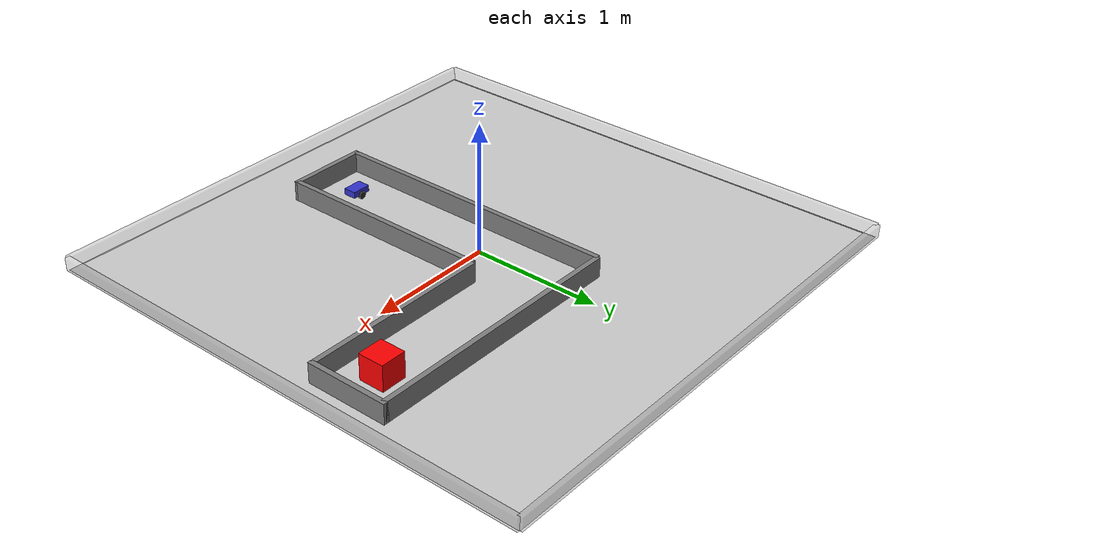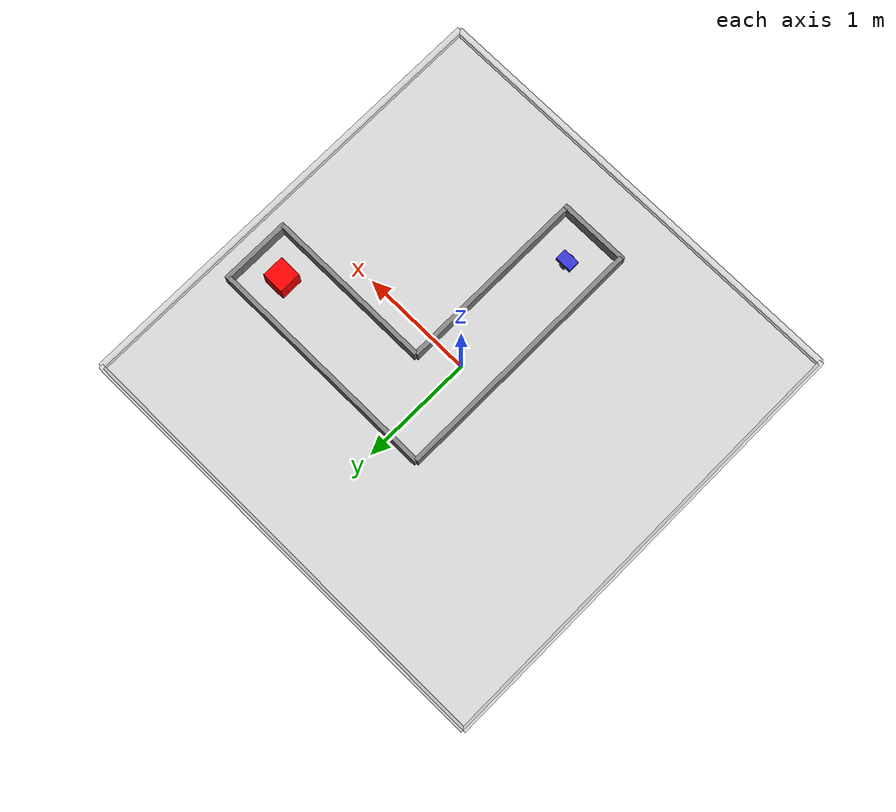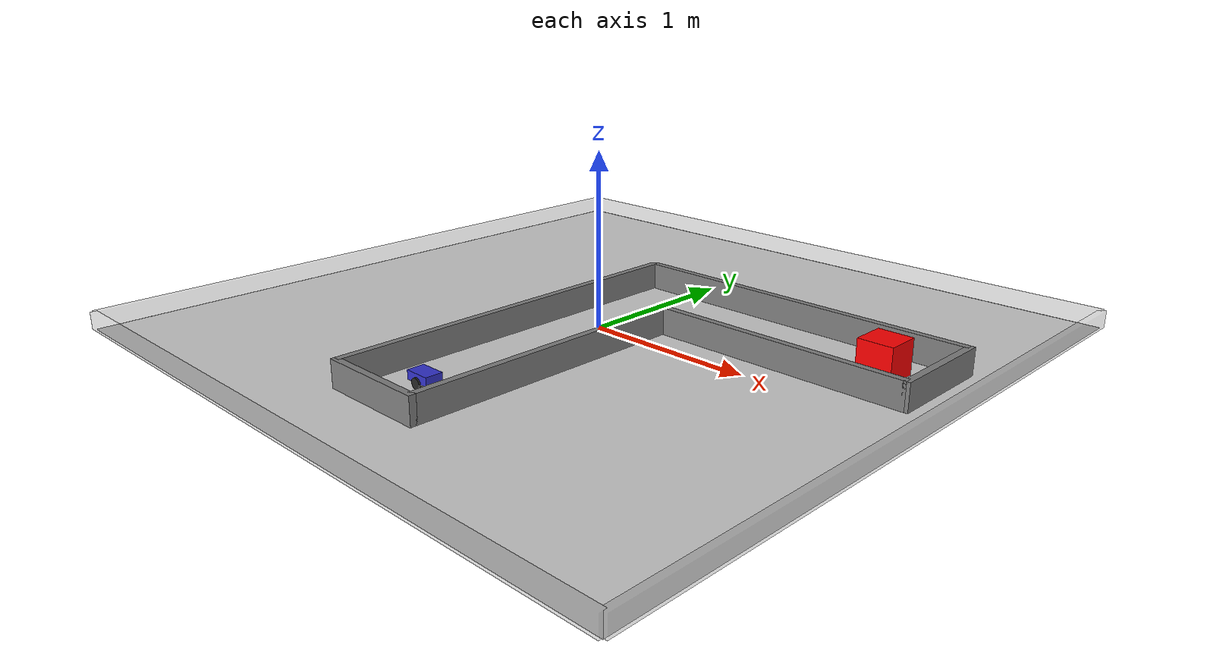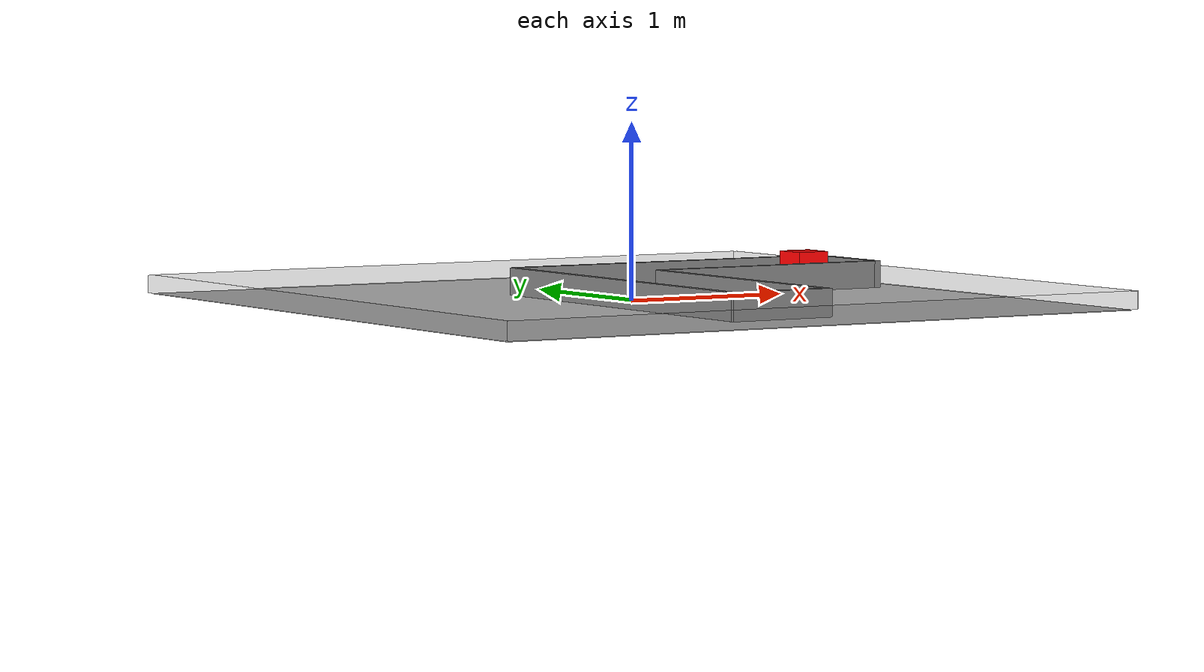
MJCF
<mujoco model="RoClaw_Corridor">
  <compiler angle="radian"/>

  <option timestep="0.002" gravity="0 0 -9.81" integrator="implicit"/>

  <default>
    <geom condim="3" friction="1.0 0.005 0.0001"/>
    <joint damping="0.01"/>
  </default>

  <asset>
    <texture name="grid" type="2d" builtin="checker"
             rgb1="0.9 0.9 0.9" rgb2="0.7 0.7 0.7"
             width="512" height="512"/>
    <material name="grid_mat" texture="grid" texrepeat="8 8" texuniform="true"/>
    <material name="chassis_mat" rgba="0.2 0.2 0.8 1"/>
    <material name="wheel_mat" rgba="0.15 0.15 0.15 1"/>
    <material name="caster_mat" rgba="0.6 0.6 0.6 1"/>
    <material name="wall_mat" rgba="0.5 0.5 0.5 1"/>
    <material name="red_cube_mat" rgba="1.0 0.0 0.0 1"/>
  </asset>

  <visual>
    <headlight ambient="0.3 0.3 0.3" diffuse="0.5 0.5 0.5"/>
  </visual>

  <worldbody>
    <light name="overhead" pos="0 0 1.5" dir="0 0 -1"
           diffuse="0.8 0.8 0.8" specular="0.2 0.2 0.2" directional="true"/>

    <!-- Ground plane -->
    <geom name="floor" type="plane" size="2 2 0.01" material="grid_mat"/>

    <!-- Arena walls (outer boundary) -->
    <geom name="wall_north" type="box" pos="0 2 0.05" size="2 0.02 0.05" rgba="0.5 0.5 0.5 0.3"/>
    <geom name="wall_south" type="box" pos="0 -2 0.05" size="2 0.02 0.05" rgba="0.5 0.5 0.5 0.3"/>
    <geom name="wall_east" type="box" pos="2 0 0.05" size="0.02 2 0.05" rgba="0.5 0.5 0.5 0.3"/>
    <geom name="wall_west" type="box" pos="-2 0 0.05" size="0.02 2 0.05" rgba="0.5 0.5 0.5 0.3"/>

    <!-- Left wall of vertical leg: x=-0.3, from y=-1.5 to y=0.8 -->
    <geom name="corridor_left" type="box" pos="-0.3 -0.35 0.05" size="0.02 1.15 0.1" material="wall_mat"/>

    <!-- Right wall of vertical leg: x=0.3, from y=-1.5 to y=0.2 (stops at corner) -->
    <geom name="corridor_right_vert" type="box" pos="0.3 -0.65 0.05" size="0.02 0.85 0.1" material="wall_mat"/>

    <!-- Top wall of horizontal leg: y=0.8, from x=-0.3 to x=1.8 -->
    <geom name="corridor_top_horiz" type="box" pos="0.75 0.8 0.05" size="1.05 0.02 0.1" material="wall_mat"/>

    <!-- Bottom wall of horizontal leg: y=0.2, from x=0.3 to x=1.8 -->
    <geom name="corridor_bottom_horiz" type="box" pos="1.05 0.2 0.05" size="0.75 0.02 0.1" material="wall_mat"/>

    <!-- Dead-end cap at bottom of vertical leg: y=-1.5, from x=-0.3 to x=0.3 -->
    <geom name="corridor_cap_south" type="box" pos="0 -1.5 0.05" size="0.32 0.02 0.1" material="wall_mat"/>

    <!-- Dead-end cap at right of horizontal leg: x=1.8, from y=0.2 to y=0.8 -->
    <geom name="corridor_cap_east" type="box" pos="1.8 0.5 0.05" size="0.02 0.32 0.1" material="wall_mat"/>

    <!-- Target: red cube at end of horizontal leg -->
    <body name="red_cube" pos="1.5 0.5 0.1">
      <geom type="box" size="0.1 0.1 0.1" material="red_cube_mat"/>
    </body>

    <!-- External overhead camera -->
    <camera name="external_cam" pos="0 0 0.8" xyaxes="1 0 0 0 1 0"
            fovy="90" resolution="640 480"/>

    <!-- ============== RoClaw Robot (starts in vertical leg) ============== -->
    <body name="chassis" pos="0 -1.2 0.06">
      <freejoint name="root"/>

      <geom name="chassis_geom" type="box"
            size="0.075 0.05 0.025"
            mass="0.3"
            material="chassis_mat"/>

      <camera name="eyes" pos="0.075 0 0.02" xyaxes="0 -1 0 0 0 1"
              fovy="65" resolution="320 240"/>

      <!-- Left wheel -->
      <body name="left_wheel" pos="0 0.05 -0.025">
        <joint name="left_wheel_joint" type="hinge" axis="0 1 0" damping="0.005"/>
        <geom name="left_wheel_geom" type="cylinder"
              size="0.03 0.01"
              euler="1.5708 0 0"
              mass="0.05"
              material="wheel_mat"
              friction="1.5 0.005 0.0001"/>
      </body>

      <!-- Right wheel -->
      <body name="right_wheel" pos="0 -0.05 -0.025">
        <joint name="right_wheel_joint" type="hinge" axis="0 1 0" damping="0.005"/>
        <geom name="right_wheel_geom" type="cylinder"
              size="0.03 0.01"
              euler="1.5708 0 0"
              mass="0.05"
              material="wheel_mat"
              friction="1.5 0.005 0.0001"/>
      </body>

      <!-- Rear caster ball -->
      <body name="caster" pos="-0.06 0 -0.025">
        <joint name="caster_x" type="hinge" axis="1 0 0" damping="0.001"/>
        <joint name="caster_y" type="hinge" axis="0 1 0" damping="0.001"/>
        <geom name="caster_geom" type="sphere"
              size="0.015"
              mass="0.02"
              material="caster_mat"
              friction="0.05 0.001 0.0001"/>
      </body>
    </body>
  </worldbody>

  <actuator>
    <velocity name="left_wheel" joint="left_wheel_joint"
              ctrlrange="-1.571 1.571" kv="1.0"/>
    <velocity name="right_wheel" joint="right_wheel_joint"
              ctrlrange="-1.571 1.571" kv="1.0"/>
  </actuator>
</mujoco>
